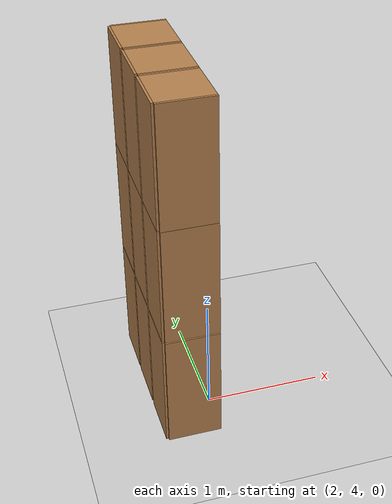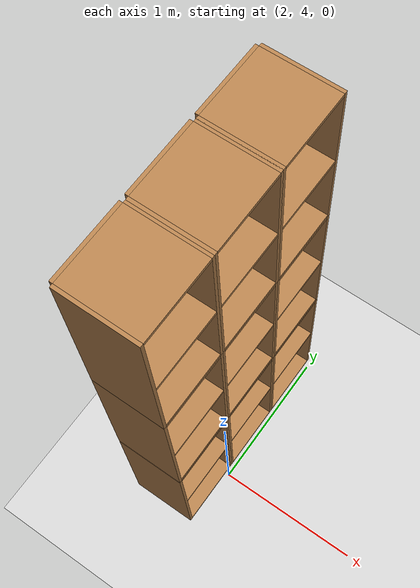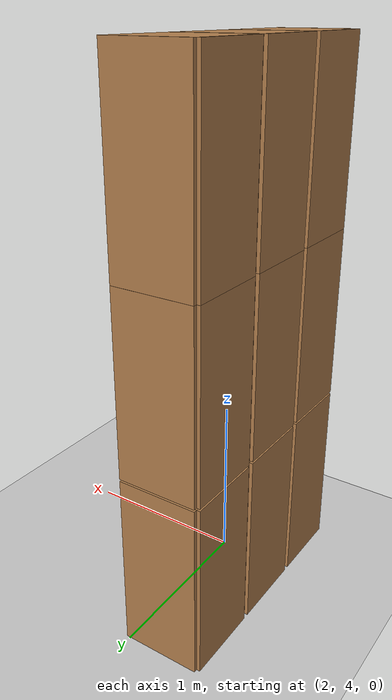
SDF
<sdf version="1.6">
 <world name="default">
  <model name="ground_plane">
   <static>1</static>
   <link name="link">
    <collision name="collision">
     <geometry><plane><normal>0 0 1</normal><size>100 100</size></plane></geometry>
     <surface>
      <contact><collide_bitmask>65535</collide_bitmask></contact>
      <friction><ode><mu>100</mu><mu2>50</mu2></ode></friction>
     </surface>
    </collision>
    <visual name="visual">
     <cast_shadows>0</cast_shadows>
     <geometry><plane><normal>0 0 1</normal><size>100 100</size></plane></geometry>
     <material>
      <script><uri>file://media/materials/scripts/gazebo.material</uri><name>Gazebo/Grey</name></script>
     </material>
    </visual>
   </link>
  </model>
  <model name="Locker18_clone_4_clone_2_clone_1_clone_clone_clone_0">
   <model name="Locker18">
    <model name="Locker3">
     <model name="cabinet">
      <static>1</static>
      <link name="cabinet_bottom_plate">
       <inertial>
        <pose>0 0 -1 0 -0 0</pose>
        <inertia><ixx>2.05</ixx><ixy>0</ixy><ixz>0</ixz><iyy>2.05</iyy><iyz>0</iyz><izz>2.05</izz></inertia>
        <mass>25</mass>
       </inertial>
       <collision name="cabinet_bottom_plate_geom">
        <pose>0 0 0.01 0 -0 0</pose>
        <geometry><box><size>0.45 0.45 0.02</size></box></geometry>
       </collision>
       <visual name="cabinet_bottom_plate_geom_visual">
        <pose>0 0 0.01 0 -0 0</pose>
        <geometry><box><size>0.45 0.45 0.02</size></box></geometry>
        <material>
         <script><uri>file://media/materials/scripts/gazebo.material</uri><name>Gazebo/Wood</name></script>
        </material>
       </visual>
       <collision name="cabinet_bottom_plate_geom_cabinet_back_plate">
        <pose>0.235 0 0.51 0 -0 0</pose>
        <geometry><box><size>0.02 0.45 1.02</size></box></geometry>
       </collision>
       <visual name="cabinet_bottom_plate_geom_cabinet_back_plate_visual">
        <pose>0.235 0 0.51 0 -0 0</pose>
        <geometry><box><size>0.02 0.45 1.02</size></box></geometry>
        <material>
         <script><uri>file://media/materials/scripts/gazebo.material</uri><name>Gazebo/Wood</name></script>
        </material>
       </visual>
       <collision name="cabinet_bottom_plate_geom_cabinet_left_plate">
        <pose>0 0.235 0.51 0 -0 0</pose>
        <geometry><box><size>0.45 0.02 1.02</size></box></geometry>
       </collision>
       <visual name="cabinet_bottom_plate_geom_cabinet_left_plate_visual">
        <pose>0 0.235 0.51 0 -0 0</pose>
        <geometry><box><size>0.45 0.02 1.02</size></box></geometry>
        <material>
         <script><uri>file://media/materials/scripts/gazebo.material</uri><name>Gazebo/Wood</name></script>
        </material>
       </visual>
       <collision name="cabinet_bottom_plate_geom_cabinet_middle_plate">
        <pose>0 0 0.51 0 -0 0</pose>
        <geometry><box><size>0.45 0.45 0.02</size></box></geometry>
       </collision>
       <visual name="cabinet_bottom_plate_geom_cabinet_middle_plate_visual">
        <pose>0 0 0.51 0 -0 0</pose>
        <geometry><box><size>0.45 0.45 0.02</size></box></geometry>
        <material>
         <script><uri>file://media/materials/scripts/gazebo.material</uri><name>Gazebo/Wood</name></script>
        </material>
       </visual>
       <collision name="cabinet_bottom_plate_geom_cabinet_right_plate">
        <pose>0 -0.235 0.51 0 -0 0</pose>
        <geometry><box><size>0.45 0.02 1.02</size></box></geometry>
       </collision>
       <visual name="cabinet_bottom_plate_geom_cabinet_right_plate_visual">
        <pose>0 -0.235 0.51 0 -0 0</pose>
        <geometry><box><size>0.45 0.02 1.02</size></box></geometry>
        <material>
         <script><uri>file://media/materials/scripts/gazebo.material</uri><name>Gazebo/Wood</name></script>
        </material>
       </visual>
       <collision name="cabinet_bottom_plate_geom_cabinet_top_plate">
        <pose>0 0 1.01 0 -0 0</pose>
        <geometry><box><size>0.45 0.45 0.02</size></box></geometry>
       </collision>
       <visual name="cabinet_bottom_plate_geom_cabinet_top_plate_visual">
        <pose>0 0 1.01 0 -0 0</pose>
        <geometry><box><size>0.45 0.45 0.02</size></box></geometry>
        <material>
         <script><uri>file://media/materials/scripts/gazebo.material</uri><name>Gazebo/Wood</name></script>
        </material>
       </visual>
      </link>
      <pose>-0.676968 1.45758 0 0 -0 0</pose>
     </model>
     <model name="cabinet_clone">
      <static>1</static>
      <link name="cabinet_bottom_plate">
       <inertial>
        <pose>0 0 -1 0 -0 0</pose>
        <inertia><ixx>2.05</ixx><ixy>0</ixy><ixz>0</ixz><iyy>2.05</iyy><iyz>0</iyz><izz>2.05</izz></inertia>
        <mass>25</mass>
       </inertial>
       <collision name="cabinet_bottom_plate_geom">
        <pose>0 0 0.01 0 -0 0</pose>
        <geometry><box><size>0.45 0.45 0.02</size></box></geometry>
       </collision>
       <visual name="cabinet_bottom_plate_geom_visual">
        <pose>0 0 0.01 0 -0 0</pose>
        <geometry><box><size>0.45 0.45 0.02</size></box></geometry>
        <material>
         <script><uri>file://media/materials/scripts/gazebo.material</uri><name>Gazebo/Wood</name></script>
        </material>
       </visual>
       <collision name="cabinet_bottom_plate_geom_cabinet_back_plate">
        <pose>0.235 0 0.51 0 -0 0</pose>
        <geometry><box><size>0.02 0.45 1.02</size></box></geometry>
       </collision>
       <visual name="cabinet_bottom_plate_geom_cabinet_back_plate_visual">
        <pose>0.235 0 0.51 0 -0 0</pose>
        <geometry><box><size>0.02 0.45 1.02</size></box></geometry>
        <material>
         <script><uri>file://media/materials/scripts/gazebo.material</uri><name>Gazebo/Wood</name></script>
        </material>
       </visual>
       <collision name="cabinet_bottom_plate_geom_cabinet_left_plate">
        <pose>0 0.235 0.51 0 -0 0</pose>
        <geometry><box><size>0.45 0.02 1.02</size></box></geometry>
       </collision>
       <visual name="cabinet_bottom_plate_geom_cabinet_left_plate_visual">
        <pose>0 0.235 0.51 0 -0 0</pose>
        <geometry><box><size>0.45 0.02 1.02</size></box></geometry>
        <material>
         <script><uri>file://media/materials/scripts/gazebo.material</uri><name>Gazebo/Wood</name></script>
        </material>
       </visual>
       <collision name="cabinet_bottom_plate_geom_cabinet_middle_plate">
        <pose>0 0 0.51 0 -0 0</pose>
        <geometry><box><size>0.45 0.45 0.02</size></box></geometry>
       </collision>
       <visual name="cabinet_bottom_plate_geom_cabinet_middle_plate_visual">
        <pose>0 0 0.51 0 -0 0</pose>
        <geometry><box><size>0.45 0.45 0.02</size></box></geometry>
        <material>
         <script><uri>file://media/materials/scripts/gazebo.material</uri><name>Gazebo/Wood</name></script>
        </material>
       </visual>
       <collision name="cabinet_bottom_plate_geom_cabinet_right_plate">
        <pose>0 -0.235 0.51 0 -0 0</pose>
        <geometry><box><size>0.45 0.02 1.02</size></box></geometry>
       </collision>
       <visual name="cabinet_bottom_plate_geom_cabinet_right_plate_visual">
        <pose>0 -0.235 0.51 0 -0 0</pose>
        <geometry><box><size>0.45 0.02 1.02</size></box></geometry>
        <material>
         <script><uri>file://media/materials/scripts/gazebo.material</uri><name>Gazebo/Wood</name></script>
        </material>
       </visual>
       <collision name="cabinet_bottom_plate_geom_cabinet_top_plate">
        <pose>0 0 1.01 0 -0 0</pose>
        <geometry><box><size>0.45 0.45 0.02</size></box></geometry>
       </collision>
       <visual name="cabinet_bottom_plate_geom_cabinet_top_plate_visual">
        <pose>0 0 1.01 0 -0 0</pose>
        <geometry><box><size>0.45 0.45 0.02</size></box></geometry>
        <material>
         <script><uri>file://media/materials/scripts/gazebo.material</uri><name>Gazebo/Wood</name></script>
        </material>
       </visual>
      </link>
      <pose>-0.676968 0.970971 0 0 -0 0</pose>
     </model>
     <model name="cabinet_clone_0">
      <static>1</static>
      <link name="cabinet_bottom_plate">
       <inertial>
        <pose>0 0 -1 0 -0 0</pose>
        <inertia><ixx>2.05</ixx><ixy>0</ixy><ixz>0</ixz><iyy>2.05</iyy><iyz>0</iyz><izz>2.05</izz></inertia>
        <mass>25</mass>
       </inertial>
       <collision name="cabinet_bottom_plate_geom">
        <pose>0 0 0.01 0 -0 0</pose>
        <geometry><box><size>0.45 0.45 0.02</size></box></geometry>
       </collision>
       <visual name="cabinet_bottom_plate_geom_visual">
        <pose>0 0 0.01 0 -0 0</pose>
        <geometry><box><size>0.45 0.45 0.02</size></box></geometry>
        <material>
         <script><uri>file://media/materials/scripts/gazebo.material</uri><name>Gazebo/Wood</name></script>
        </material>
       </visual>
       <collision name="cabinet_bottom_plate_geom_cabinet_back_plate">
        <pose>0.235 0 0.51 0 -0 0</pose>
        <geometry><box><size>0.02 0.45 1.02</size></box></geometry>
       </collision>
       <visual name="cabinet_bottom_plate_geom_cabinet_back_plate_visual">
        <pose>0.235 0 0.51 0 -0 0</pose>
        <geometry><box><size>0.02 0.45 1.02</size></box></geometry>
        <material>
         <script><uri>file://media/materials/scripts/gazebo.material</uri><name>Gazebo/Wood</name></script>
        </material>
       </visual>
       <collision name="cabinet_bottom_plate_geom_cabinet_left_plate">
        <pose>0 0.235 0.51 0 -0 0</pose>
        <geometry><box><size>0.45 0.02 1.02</size></box></geometry>
       </collision>
       <visual name="cabinet_bottom_plate_geom_cabinet_left_plate_visual">
        <pose>0 0.235 0.51 0 -0 0</pose>
        <geometry><box><size>0.45 0.02 1.02</size></box></geometry>
        <material>
         <script><uri>file://media/materials/scripts/gazebo.material</uri><name>Gazebo/Wood</name></script>
        </material>
       </visual>
       <collision name="cabinet_bottom_plate_geom_cabinet_middle_plate">
        <pose>0 0 0.51 0 -0 0</pose>
        <geometry><box><size>0.45 0.45 0.02</size></box></geometry>
       </collision>
       <visual name="cabinet_bottom_plate_geom_cabinet_middle_plate_visual">
        <pose>0 0 0.51 0 -0 0</pose>
        <geometry><box><size>0.45 0.45 0.02</size></box></geometry>
        <material>
         <script><uri>file://media/materials/scripts/gazebo.material</uri><name>Gazebo/Wood</name></script>
        </material>
       </visual>
       <collision name="cabinet_bottom_plate_geom_cabinet_right_plate">
        <pose>0 -0.235 0.51 0 -0 0</pose>
        <geometry><box><size>0.45 0.02 1.02</size></box></geometry>
       </collision>
       <visual name="cabinet_bottom_plate_geom_cabinet_right_plate_visual">
        <pose>0 -0.235 0.51 0 -0 0</pose>
        <geometry><box><size>0.45 0.02 1.02</size></box></geometry>
        <material>
         <script><uri>file://media/materials/scripts/gazebo.material</uri><name>Gazebo/Wood</name></script>
        </material>
       </visual>
       <collision name="cabinet_bottom_plate_geom_cabinet_top_plate">
        <pose>0 0 1.01 0 -0 0</pose>
        <geometry><box><size>0.45 0.45 0.02</size></box></geometry>
       </collision>
       <visual name="cabinet_bottom_plate_geom_cabinet_top_plate_visual">
        <pose>0 0 1.01 0 -0 0</pose>
        <geometry><box><size>0.45 0.45 0.02</size></box></geometry>
        <material>
         <script><uri>file://media/materials/scripts/gazebo.material</uri><name>Gazebo/Wood</name></script>
        </material>
       </visual>
      </link>
      <pose>-0.676968 0.48391 0 0 -0 0</pose>
     </model>
     <static>0</static>
     <pose>0 3e-06 -1.02763 0 -0 0</pose>
    </model>
    <model name="Locker3_clone">
     <model name="cabinet">
      <static>1</static>
      <link name="cabinet_bottom_plate">
       <inertial>
        <pose>0 0 -1 0 -0 0</pose>
        <inertia><ixx>2.05</ixx><ixy>0</ixy><ixz>0</ixz><iyy>2.05</iyy><iyz>0</iyz><izz>2.05</izz></inertia>
        <mass>25</mass>
       </inertial>
       <collision name="cabinet_bottom_plate_geom">
        <pose>0 0 0.01 0 -0 0</pose>
        <geometry><box><size>0.45 0.45 0.02</size></box></geometry>
       </collision>
       <visual name="cabinet_bottom_plate_geom_visual">
        <pose>0 0 0.01 0 -0 0</pose>
        <geometry><box><size>0.45 0.45 0.02</size></box></geometry>
        <material>
         <script><uri>file://media/materials/scripts/gazebo.material</uri><name>Gazebo/Wood</name></script>
        </material>
       </visual>
       <collision name="cabinet_bottom_plate_geom_cabinet_back_plate">
        <pose>0.235 0 0.51 0 -0 0</pose>
        <geometry><box><size>0.02 0.45 1.02</size></box></geometry>
       </collision>
       <visual name="cabinet_bottom_plate_geom_cabinet_back_plate_visual">
        <pose>0.235 0 0.51 0 -0 0</pose>
        <geometry><box><size>0.02 0.45 1.02</size></box></geometry>
        <material>
         <script><uri>file://media/materials/scripts/gazebo.material</uri><name>Gazebo/Wood</name></script>
        </material>
       </visual>
       <collision name="cabinet_bottom_plate_geom_cabinet_left_plate">
        <pose>0 0.235 0.51 0 -0 0</pose>
        <geometry><box><size>0.45 0.02 1.02</size></box></geometry>
       </collision>
       <visual name="cabinet_bottom_plate_geom_cabinet_left_plate_visual">
        <pose>0 0.235 0.51 0 -0 0</pose>
        <geometry><box><size>0.45 0.02 1.02</size></box></geometry>
        <material>
         <script><uri>file://media/materials/scripts/gazebo.material</uri><name>Gazebo/Wood</name></script>
        </material>
       </visual>
       <collision name="cabinet_bottom_plate_geom_cabinet_middle_plate">
        <pose>0 0 0.51 0 -0 0</pose>
        <geometry><box><size>0.45 0.45 0.02</size></box></geometry>
       </collision>
       <visual name="cabinet_bottom_plate_geom_cabinet_middle_plate_visual">
        <pose>0 0 0.51 0 -0 0</pose>
        <geometry><box><size>0.45 0.45 0.02</size></box></geometry>
        <material>
         <script><uri>file://media/materials/scripts/gazebo.material</uri><name>Gazebo/Wood</name></script>
        </material>
       </visual>
       <collision name="cabinet_bottom_plate_geom_cabinet_right_plate">
        <pose>0 -0.235 0.51 0 -0 0</pose>
        <geometry><box><size>0.45 0.02 1.02</size></box></geometry>
       </collision>
       <visual name="cabinet_bottom_plate_geom_cabinet_right_plate_visual">
        <pose>0 -0.235 0.51 0 -0 0</pose>
        <geometry><box><size>0.45 0.02 1.02</size></box></geometry>
        <material>
         <script><uri>file://media/materials/scripts/gazebo.material</uri><name>Gazebo/Wood</name></script>
        </material>
       </visual>
       <collision name="cabinet_bottom_plate_geom_cabinet_top_plate">
        <pose>0 0 1.01 0 -0 0</pose>
        <geometry><box><size>0.45 0.45 0.02</size></box></geometry>
       </collision>
       <visual name="cabinet_bottom_plate_geom_cabinet_top_plate_visual">
        <pose>0 0 1.01 0 -0 0</pose>
        <geometry><box><size>0.45 0.45 0.02</size></box></geometry>
        <material>
         <script><uri>file://media/materials/scripts/gazebo.material</uri><name>Gazebo/Wood</name></script>
        </material>
       </visual>
      </link>
      <pose>-0.676968 1.45758 0 0 -0 0</pose>
     </model>
     <model name="cabinet_clone">
      <static>1</static>
      <link name="cabinet_bottom_plate">
       <inertial>
        <pose>0 0 -1 0 -0 0</pose>
        <inertia><ixx>2.05</ixx><ixy>0</ixy><ixz>0</ixz><iyy>2.05</iyy><iyz>0</iyz><izz>2.05</izz></inertia>
        <mass>25</mass>
       </inertial>
       <collision name="cabinet_bottom_plate_geom">
        <pose>0 0 0.01 0 -0 0</pose>
        <geometry><box><size>0.45 0.45 0.02</size></box></geometry>
       </collision>
       <visual name="cabinet_bottom_plate_geom_visual">
        <pose>0 0 0.01 0 -0 0</pose>
        <geometry><box><size>0.45 0.45 0.02</size></box></geometry>
        <material>
         <script><uri>file://media/materials/scripts/gazebo.material</uri><name>Gazebo/Wood</name></script>
        </material>
       </visual>
       <collision name="cabinet_bottom_plate_geom_cabinet_back_plate">
        <pose>0.235 0 0.51 0 -0 0</pose>
        <geometry><box><size>0.02 0.45 1.02</size></box></geometry>
       </collision>
       <visual name="cabinet_bottom_plate_geom_cabinet_back_plate_visual">
        <pose>0.235 0 0.51 0 -0 0</pose>
        <geometry><box><size>0.02 0.45 1.02</size></box></geometry>
        <material>
         <script><uri>file://media/materials/scripts/gazebo.material</uri><name>Gazebo/Wood</name></script>
        </material>
       </visual>
       <collision name="cabinet_bottom_plate_geom_cabinet_left_plate">
        <pose>0 0.235 0.51 0 -0 0</pose>
        <geometry><box><size>0.45 0.02 1.02</size></box></geometry>
       </collision>
       <visual name="cabinet_bottom_plate_geom_cabinet_left_plate_visual">
        <pose>0 0.235 0.51 0 -0 0</pose>
        <geometry><box><size>0.45 0.02 1.02</size></box></geometry>
        <material>
         <script><uri>file://media/materials/scripts/gazebo.material</uri><name>Gazebo/Wood</name></script>
        </material>
       </visual>
       <collision name="cabinet_bottom_plate_geom_cabinet_middle_plate">
        <pose>0 0 0.51 0 -0 0</pose>
        <geometry><box><size>0.45 0.45 0.02</size></box></geometry>
       </collision>
       <visual name="cabinet_bottom_plate_geom_cabinet_middle_plate_visual">
        <pose>0 0 0.51 0 -0 0</pose>
        <geometry><box><size>0.45 0.45 0.02</size></box></geometry>
        <material>
         <script><uri>file://media/materials/scripts/gazebo.material</uri><name>Gazebo/Wood</name></script>
        </material>
       </visual>
       <collision name="cabinet_bottom_plate_geom_cabinet_right_plate">
        <pose>0 -0.235 0.51 0 -0 0</pose>
        <geometry><box><size>0.45 0.02 1.02</size></box></geometry>
       </collision>
       <visual name="cabinet_bottom_plate_geom_cabinet_right_plate_visual">
        <pose>0 -0.235 0.51 0 -0 0</pose>
        <geometry><box><size>0.45 0.02 1.02</size></box></geometry>
        <material>
         <script><uri>file://media/materials/scripts/gazebo.material</uri><name>Gazebo/Wood</name></script>
        </material>
       </visual>
       <collision name="cabinet_bottom_plate_geom_cabinet_top_plate">
        <pose>0 0 1.01 0 -0 0</pose>
        <geometry><box><size>0.45 0.45 0.02</size></box></geometry>
       </collision>
       <visual name="cabinet_bottom_plate_geom_cabinet_top_plate_visual">
        <pose>0 0 1.01 0 -0 0</pose>
        <geometry><box><size>0.45 0.45 0.02</size></box></geometry>
        <material>
         <script><uri>file://media/materials/scripts/gazebo.material</uri><name>Gazebo/Wood</name></script>
        </material>
       </visual>
      </link>
      <pose>-0.676968 0.970971 0 0 -0 0</pose>
     </model>
     <model name="cabinet_clone_0">
      <static>1</static>
      <link name="cabinet_bottom_plate">
       <inertial>
        <pose>0 0 -1 0 -0 0</pose>
        <inertia><ixx>2.05</ixx><ixy>0</ixy><ixz>0</ixz><iyy>2.05</iyy><iyz>0</iyz><izz>2.05</izz></inertia>
        <mass>25</mass>
       </inertial>
       <collision name="cabinet_bottom_plate_geom">
        <pose>0 0 0.01 0 -0 0</pose>
        <geometry><box><size>0.45 0.45 0.02</size></box></geometry>
       </collision>
       <visual name="cabinet_bottom_plate_geom_visual">
        <pose>0 0 0.01 0 -0 0</pose>
        <geometry><box><size>0.45 0.45 0.02</size></box></geometry>
        <material>
         <script><uri>file://media/materials/scripts/gazebo.material</uri><name>Gazebo/Wood</name></script>
        </material>
       </visual>
       <collision name="cabinet_bottom_plate_geom_cabinet_back_plate">
        <pose>0.235 0 0.51 0 -0 0</pose>
        <geometry><box><size>0.02 0.45 1.02</size></box></geometry>
       </collision>
       <visual name="cabinet_bottom_plate_geom_cabinet_back_plate_visual">
        <pose>0.235 0 0.51 0 -0 0</pose>
        <geometry><box><size>0.02 0.45 1.02</size></box></geometry>
        <material>
         <script><uri>file://media/materials/scripts/gazebo.material</uri><name>Gazebo/Wood</name></script>
        </material>
       </visual>
       <collision name="cabinet_bottom_plate_geom_cabinet_left_plate">
        <pose>0 0.235 0.51 0 -0 0</pose>
        <geometry><box><size>0.45 0.02 1.02</size></box></geometry>
       </collision>
       <visual name="cabinet_bottom_plate_geom_cabinet_left_plate_visual">
        <pose>0 0.235 0.51 0 -0 0</pose>
        <geometry><box><size>0.45 0.02 1.02</size></box></geometry>
        <material>
         <script><uri>file://media/materials/scripts/gazebo.material</uri><name>Gazebo/Wood</name></script>
        </material>
       </visual>
       <collision name="cabinet_bottom_plate_geom_cabinet_middle_plate">
        <pose>0 0 0.51 0 -0 0</pose>
        <geometry><box><size>0.45 0.45 0.02</size></box></geometry>
       </collision>
       <visual name="cabinet_bottom_plate_geom_cabinet_middle_plate_visual">
        <pose>0 0 0.51 0 -0 0</pose>
        <geometry><box><size>0.45 0.45 0.02</size></box></geometry>
        <material>
         <script><uri>file://media/materials/scripts/gazebo.material</uri><name>Gazebo/Wood</name></script>
        </material>
       </visual>
       <collision name="cabinet_bottom_plate_geom_cabinet_right_plate">
        <pose>0 -0.235 0.51 0 -0 0</pose>
        <geometry><box><size>0.45 0.02 1.02</size></box></geometry>
       </collision>
       <visual name="cabinet_bottom_plate_geom_cabinet_right_plate_visual">
        <pose>0 -0.235 0.51 0 -0 0</pose>
        <geometry><box><size>0.45 0.02 1.02</size></box></geometry>
        <material>
         <script><uri>file://media/materials/scripts/gazebo.material</uri><name>Gazebo/Wood</name></script>
        </material>
       </visual>
       <collision name="cabinet_bottom_plate_geom_cabinet_top_plate">
        <pose>0 0 1.01 0 -0 0</pose>
        <geometry><box><size>0.45 0.45 0.02</size></box></geometry>
       </collision>
       <visual name="cabinet_bottom_plate_geom_cabinet_top_plate_visual">
        <pose>0 0 1.01 0 -0 0</pose>
        <geometry><box><size>0.45 0.45 0.02</size></box></geometry>
        <material>
         <script><uri>file://media/materials/scripts/gazebo.material</uri><name>Gazebo/Wood</name></script>
        </material>
       </visual>
      </link>
      <pose>-0.676968 0.48391 0 0 -0 0</pose>
     </model>
     <static>0</static>
     <pose>0 3e-06 0.003717 0 -0 0</pose>
    </model>
    <model name="Locker3_clone_clone">
     <model name="cabinet">
      <static>1</static>
      <link name="cabinet_bottom_plate">
       <inertial>
        <pose>0 0 -1 0 -0 0</pose>
        <inertia><ixx>2.05</ixx><ixy>0</ixy><ixz>0</ixz><iyy>2.05</iyy><iyz>0</iyz><izz>2.05</izz></inertia>
        <mass>25</mass>
       </inertial>
       <collision name="cabinet_bottom_plate_geom">
        <pose>0 0 0.01 0 -0 0</pose>
        <geometry><box><size>0.45 0.45 0.02</size></box></geometry>
       </collision>
       <visual name="cabinet_bottom_plate_geom_visual">
        <pose>0 0 0.01 0 -0 0</pose>
        <geometry><box><size>0.45 0.45 0.02</size></box></geometry>
        <material>
         <script><uri>file://media/materials/scripts/gazebo.material</uri><name>Gazebo/Wood</name></script>
        </material>
       </visual>
       <collision name="cabinet_bottom_plate_geom_cabinet_back_plate">
        <pose>0.235 0 0.51 0 -0 0</pose>
        <geometry><box><size>0.02 0.45 1.02</size></box></geometry>
       </collision>
       <visual name="cabinet_bottom_plate_geom_cabinet_back_plate_visual">
        <pose>0.235 0 0.51 0 -0 0</pose>
        <geometry><box><size>0.02 0.45 1.02</size></box></geometry>
        <material>
         <script><uri>file://media/materials/scripts/gazebo.material</uri><name>Gazebo/Wood</name></script>
        </material>
       </visual>
       <collision name="cabinet_bottom_plate_geom_cabinet_left_plate">
        <pose>0 0.235 0.51 0 -0 0</pose>
        <geometry><box><size>0.45 0.02 1.02</size></box></geometry>
       </collision>
       <visual name="cabinet_bottom_plate_geom_cabinet_left_plate_visual">
        <pose>0 0.235 0.51 0 -0 0</pose>
        <geometry><box><size>0.45 0.02 1.02</size></box></geometry>
        <material>
         <script><uri>file://media/materials/scripts/gazebo.material</uri><name>Gazebo/Wood</name></script>
        </material>
       </visual>
       <collision name="cabinet_bottom_plate_geom_cabinet_middle_plate">
        <pose>0 0 0.51 0 -0 0</pose>
        <geometry><box><size>0.45 0.45 0.02</size></box></geometry>
       </collision>
       <visual name="cabinet_bottom_plate_geom_cabinet_middle_plate_visual">
        <pose>0 0 0.51 0 -0 0</pose>
        <geometry><box><size>0.45 0.45 0.02</size></box></geometry>
        <material>
         <script><uri>file://media/materials/scripts/gazebo.material</uri><name>Gazebo/Wood</name></script>
        </material>
       </visual>
       <collision name="cabinet_bottom_plate_geom_cabinet_right_plate">
        <pose>0 -0.235 0.51 0 -0 0</pose>
        <geometry><box><size>0.45 0.02 1.02</size></box></geometry>
       </collision>
       <visual name="cabinet_bottom_plate_geom_cabinet_right_plate_visual">
        <pose>0 -0.235 0.51 0 -0 0</pose>
        <geometry><box><size>0.45 0.02 1.02</size></box></geometry>
        <material>
         <script><uri>file://media/materials/scripts/gazebo.material</uri><name>Gazebo/Wood</name></script>
        </material>
       </visual>
       <collision name="cabinet_bottom_plate_geom_cabinet_top_plate">
        <pose>0 0 1.01 0 -0 0</pose>
        <geometry><box><size>0.45 0.45 0.02</size></box></geometry>
       </collision>
       <visual name="cabinet_bottom_plate_geom_cabinet_top_plate_visual">
        <pose>0 0 1.01 0 -0 0</pose>
        <geometry><box><size>0.45 0.45 0.02</size></box></geometry>
        <material>
         <script><uri>file://media/materials/scripts/gazebo.material</uri><name>Gazebo/Wood</name></script>
        </material>
       </visual>
      </link>
      <pose>-0.676968 1.45758 0 0 -0 0</pose>
     </model>
     <model name="cabinet_clone">
      <static>1</static>
      <link name="cabinet_bottom_plate">
       <inertial>
        <pose>0 0 -1 0 -0 0</pose>
        <inertia><ixx>2.05</ixx><ixy>0</ixy><ixz>0</ixz><iyy>2.05</iyy><iyz>0</iyz><izz>2.05</izz></inertia>
        <mass>25</mass>
       </inertial>
       <collision name="cabinet_bottom_plate_geom">
        <pose>0 0 0.01 0 -0 0</pose>
        <geometry><box><size>0.45 0.45 0.02</size></box></geometry>
       </collision>
       <visual name="cabinet_bottom_plate_geom_visual">
        <pose>0 0 0.01 0 -0 0</pose>
        <geometry><box><size>0.45 0.45 0.02</size></box></geometry>
        <material>
         <script><uri>file://media/materials/scripts/gazebo.material</uri><name>Gazebo/Wood</name></script>
        </material>
       </visual>
       <collision name="cabinet_bottom_plate_geom_cabinet_back_plate">
        <pose>0.235 0 0.51 0 -0 0</pose>
        <geometry><box><size>0.02 0.45 1.02</size></box></geometry>
       </collision>
       <visual name="cabinet_bottom_plate_geom_cabinet_back_plate_visual">
        <pose>0.235 0 0.51 0 -0 0</pose>
        <geometry><box><size>0.02 0.45 1.02</size></box></geometry>
        <material>
         <script><uri>file://media/materials/scripts/gazebo.material</uri><name>Gazebo/Wood</name></script>
        </material>
       </visual>
       <collision name="cabinet_bottom_plate_geom_cabinet_left_plate">
        <pose>0 0.235 0.51 0 -0 0</pose>
        <geometry><box><size>0.45 0.02 1.02</size></box></geometry>
       </collision>
       <visual name="cabinet_bottom_plate_geom_cabinet_left_plate_visual">
        <pose>0 0.235 0.51 0 -0 0</pose>
        <geometry><box><size>0.45 0.02 1.02</size></box></geometry>
        <material>
         <script><uri>file://media/materials/scripts/gazebo.material</uri><name>Gazebo/Wood</name></script>
        </material>
       </visual>
       <collision name="cabinet_bottom_plate_geom_cabinet_middle_plate">
        <pose>0 0 0.51 0 -0 0</pose>
        <geometry><box><size>0.45 0.45 0.02</size></box></geometry>
       </collision>
       <visual name="cabinet_bottom_plate_geom_cabinet_middle_plate_visual">
        <pose>0 0 0.51 0 -0 0</pose>
        <geometry><box><size>0.45 0.45 0.02</size></box></geometry>
        <material>
         <script><uri>file://media/materials/scripts/gazebo.material</uri><name>Gazebo/Wood</name></script>
        </material>
       </visual>
       <collision name="cabinet_bottom_plate_geom_cabinet_right_plate">
        <pose>0 -0.235 0.51 0 -0 0</pose>
        <geometry><box><size>0.45 0.02 1.02</size></box></geometry>
       </collision>
       <visual name="cabinet_bottom_plate_geom_cabinet_right_plate_visual">
        <pose>0 -0.235 0.51 0 -0 0</pose>
        <geometry><box><size>0.45 0.02 1.02</size></box></geometry>
        <material>
         <script><uri>file://media/materials/scripts/gazebo.material</uri><name>Gazebo/Wood</name></script>
        </material>
       </visual>
       <collision name="cabinet_bottom_plate_geom_cabinet_top_plate">
        <pose>0 0 1.01 0 -0 0</pose>
        <geometry><box><size>0.45 0.45 0.02</size></box></geometry>
       </collision>
       <visual name="cabinet_bottom_plate_geom_cabinet_top_plate_visual">
        <pose>0 0 1.01 0 -0 0</pose>
        <geometry><box><size>0.45 0.45 0.02</size></box></geometry>
        <material>
         <script><uri>file://media/materials/scripts/gazebo.material</uri><name>Gazebo/Wood</name></script>
        </material>
       </visual>
      </link>
      <pose>-0.676968 0.970971 0 0 -0 0</pose>
     </model>
     <model name="cabinet_clone_0">
      <static>1</static>
      <link name="cabinet_bottom_plate">
       <inertial>
        <pose>0 0 -1 0 -0 0</pose>
        <inertia><ixx>2.05</ixx><ixy>0</ixy><ixz>0</ixz><iyy>2.05</iyy><iyz>0</iyz><izz>2.05</izz></inertia>
        <mass>25</mass>
       </inertial>
       <collision name="cabinet_bottom_plate_geom">
        <pose>0 0 0.01 0 -0 0</pose>
        <geometry><box><size>0.45 0.45 0.02</size></box></geometry>
       </collision>
       <visual name="cabinet_bottom_plate_geom_visual">
        <pose>0 0 0.01 0 -0 0</pose>
        <geometry><box><size>0.45 0.45 0.02</size></box></geometry>
        <material>
         <script><uri>file://media/materials/scripts/gazebo.material</uri><name>Gazebo/Wood</name></script>
        </material>
       </visual>
       <collision name="cabinet_bottom_plate_geom_cabinet_back_plate">
        <pose>0.235 0 0.51 0 -0 0</pose>
        <geometry><box><size>0.02 0.45 1.02</size></box></geometry>
       </collision>
       <visual name="cabinet_bottom_plate_geom_cabinet_back_plate_visual">
        <pose>0.235 0 0.51 0 -0 0</pose>
        <geometry><box><size>0.02 0.45 1.02</size></box></geometry>
        <material>
         <script><uri>file://media/materials/scripts/gazebo.material</uri><name>Gazebo/Wood</name></script>
        </material>
       </visual>
       <collision name="cabinet_bottom_plate_geom_cabinet_left_plate">
        <pose>0 0.235 0.51 0 -0 0</pose>
        <geometry><box><size>0.45 0.02 1.02</size></box></geometry>
       </collision>
       <visual name="cabinet_bottom_plate_geom_cabinet_left_plate_visual">
        <pose>0 0.235 0.51 0 -0 0</pose>
        <geometry><box><size>0.45 0.02 1.02</size></box></geometry>
        <material>
         <script><uri>file://media/materials/scripts/gazebo.material</uri><name>Gazebo/Wood</name></script>
        </material>
       </visual>
       <collision name="cabinet_bottom_plate_geom_cabinet_middle_plate">
        <pose>0 0 0.51 0 -0 0</pose>
        <geometry><box><size>0.45 0.45 0.02</size></box></geometry>
       </collision>
       <visual name="cabinet_bottom_plate_geom_cabinet_middle_plate_visual">
        <pose>0 0 0.51 0 -0 0</pose>
        <geometry><box><size>0.45 0.45 0.02</size></box></geometry>
        <material>
         <script><uri>file://media/materials/scripts/gazebo.material</uri><name>Gazebo/Wood</name></script>
        </material>
       </visual>
       <collision name="cabinet_bottom_plate_geom_cabinet_right_plate">
        <pose>0 -0.235 0.51 0 -0 0</pose>
        <geometry><box><size>0.45 0.02 1.02</size></box></geometry>
       </collision>
       <visual name="cabinet_bottom_plate_geom_cabinet_right_plate_visual">
        <pose>0 -0.235 0.51 0 -0 0</pose>
        <geometry><box><size>0.45 0.02 1.02</size></box></geometry>
        <material>
         <script><uri>file://media/materials/scripts/gazebo.material</uri><name>Gazebo/Wood</name></script>
        </material>
       </visual>
       <collision name="cabinet_bottom_plate_geom_cabinet_top_plate">
        <pose>0 0 1.01 0 -0 0</pose>
        <geometry><box><size>0.45 0.45 0.02</size></box></geometry>
       </collision>
       <visual name="cabinet_bottom_plate_geom_cabinet_top_plate_visual">
        <pose>0 0 1.01 0 -0 0</pose>
        <geometry><box><size>0.45 0.45 0.02</size></box></geometry>
        <material>
         <script><uri>file://media/materials/scripts/gazebo.material</uri><name>Gazebo/Wood</name></script>
        </material>
       </visual>
      </link>
      <pose>-0.676968 0.48391 0 0 -0 0</pose>
     </model>
     <static>0</static>
     <pose>0 3e-06 1.02391 0 -0 0</pose>
    </model>
    <static>0</static>
    <pose>-0 4e-06 4e-06 0 -0 0</pose>
   </model>
   <static>0</static>
   <pose>1.08178 5.27597 1.08672 0 -0 3.14119</pose>
  </model>
 </world>
</sdf>
